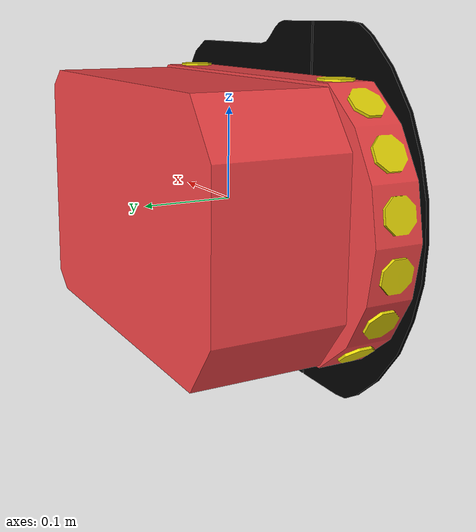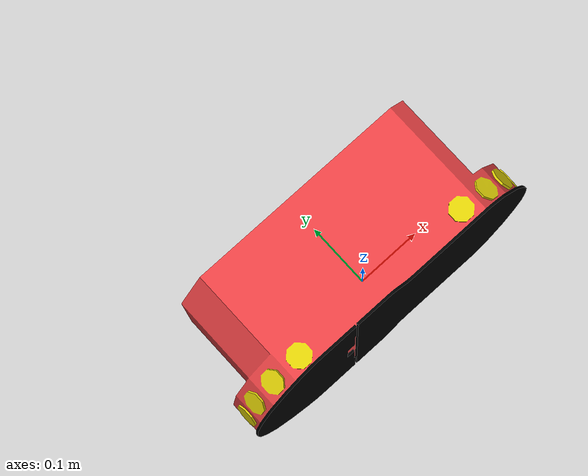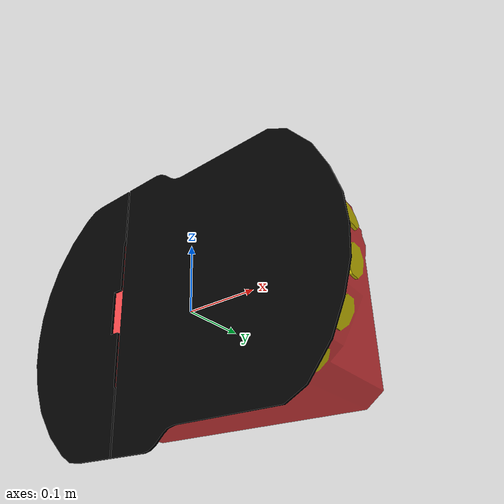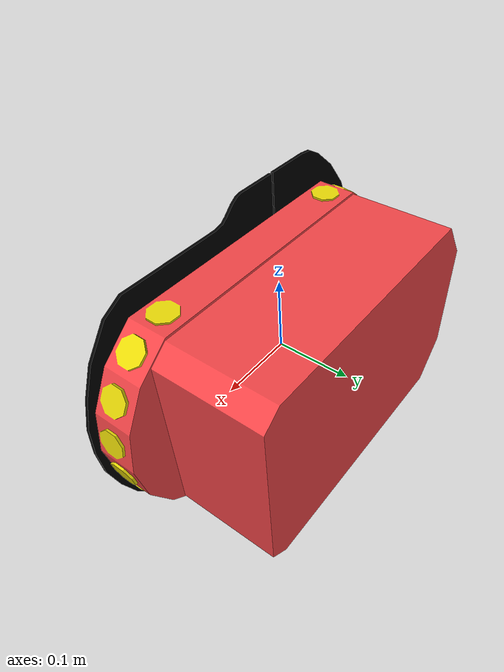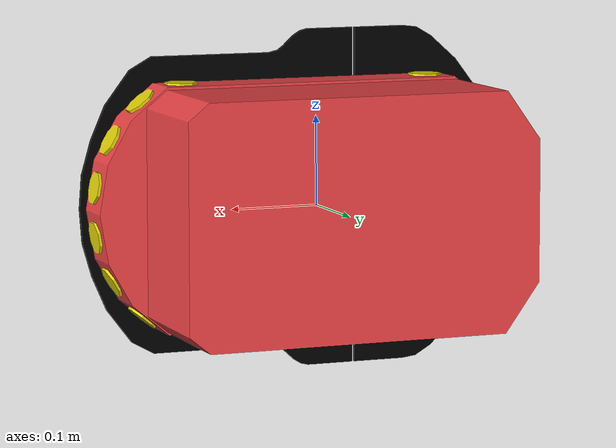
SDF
<?xml version='1.6' ?>
<sdf version='1.7'>
  <model name='Electrical Box'>
    <static>false</static>
    <link name='link'>
      <pose>0 0 0 1.57 3.14159 0</pose>
	<self_collide>true</self_collide>
      <collision name='collision'>
       <geometry>
          <mesh>
            <uri>model://pioneer2dx/meshes/chassis.dae</uri>
          </mesh>
        </geometry>
      </collision>
      <visual name='visual'>
     <geometry>
          <mesh>
            <uri>model://pioneer2dx/meshes/chassis.dae</uri>
          </mesh>
        </geometry>
      </visual>
    </link>
  </model>
</sdf>
